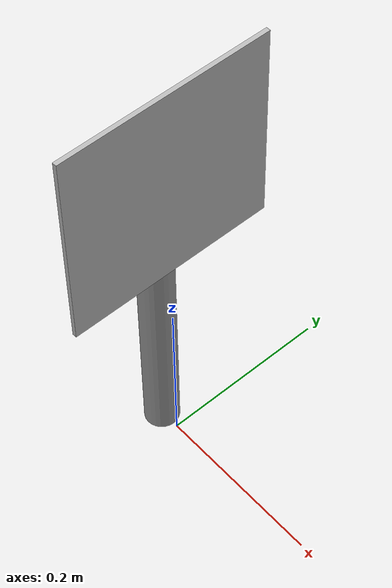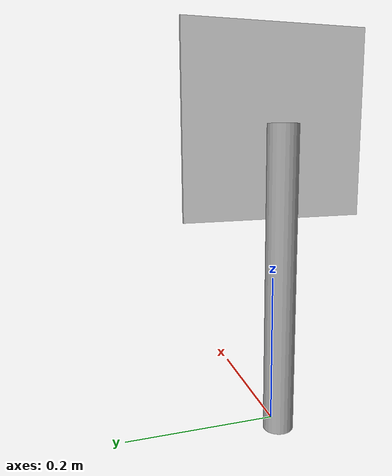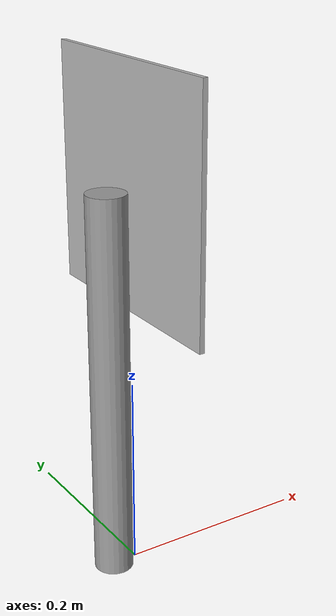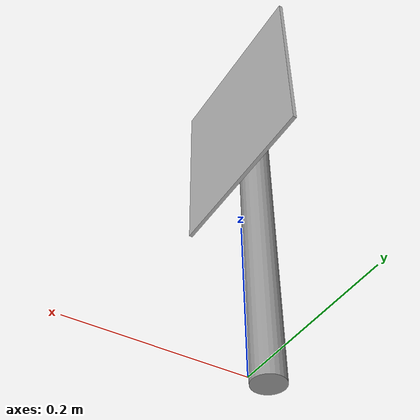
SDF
<?xml version="1.0"?>
<sdf version="1.7">
  <model name="aruco_marker_board">
    <static>true</static>

    <!-- Vertical post — offset -0.025 m in local X so it sits behind the marker
         panel (panel back face is at x = -0.0025 m); invisible from the front. -->
    <link name="post_link">
      <visual name="post_visual">
        <pose>-0.025 0 0.2 0 0 0</pose>
        <geometry><cylinder><radius>0.02</radius><length>0.4</length></cylinder></geometry>
        <material><script><name>Gazebo/Grey</name></script></material>
      </visual>
      <collision name="post_collision">
        <pose>-0.025 0 0.2 0 0 0</pose>
        <geometry><cylinder><radius>0.02</radius><length>0.4</length></cylinder></geometry>
      </collision>
    </link>

    <!-- Marker panel: 0.24 x 0.24 m (thin in local X).
         Rotate the model 180 deg around Z in the world file so the +X face
         (where OGRE maps the texture without mirroring) faces the robot. -->
    <link name="marker_link">
      <pose>0 0 0.4 0 0 0</pose>
      <visual name="marker_visual">
        <geometry>
          <box><size>0.005 0.24 0.24</size></box>
        </geometry>
        <material>
          <script>
            <uri>model://aruco_marker_board/materials/scripts</uri>
            <uri>model://aruco_marker_board/materials/textures</uri>
            <name>ArUcoMarker/Marker0</name>
          </script>
        </material>
      </visual>
      <collision name="marker_collision">
        <geometry><box><size>0.005 0.24 0.24</size></box></geometry>
      </collision>
    </link>

    <joint name="post_marker_joint" type="fixed">
      <parent>post_link</parent>
      <child>marker_link</child>
    </joint>
  </model>
</sdf>
